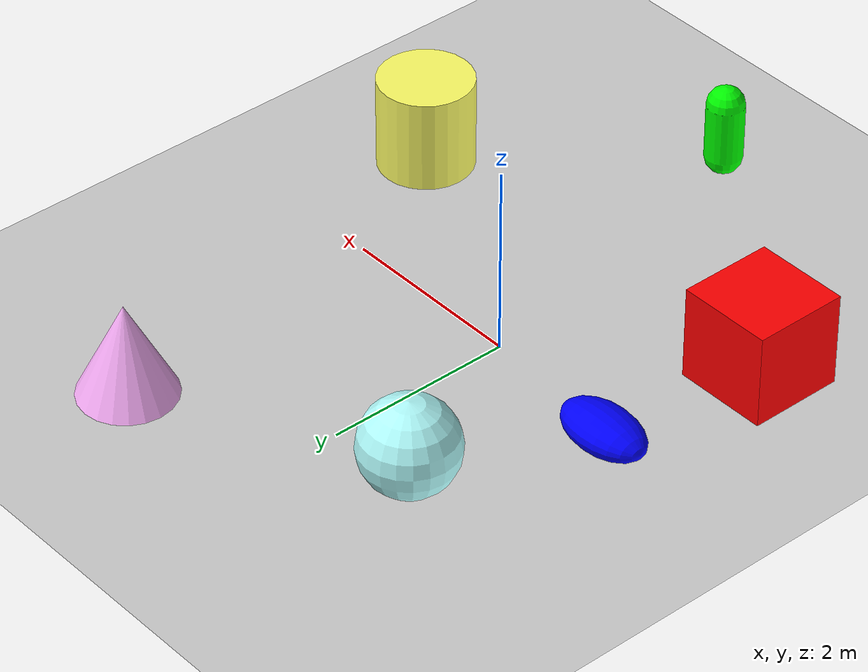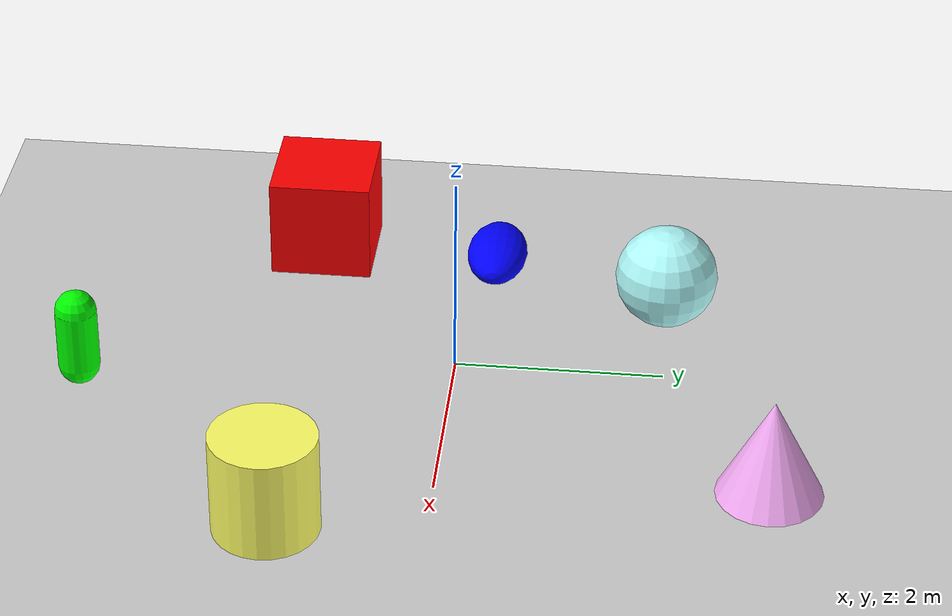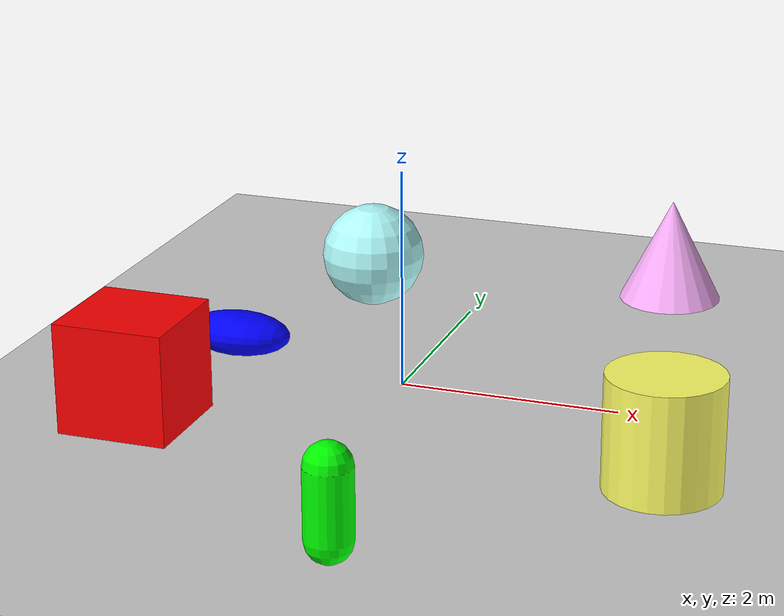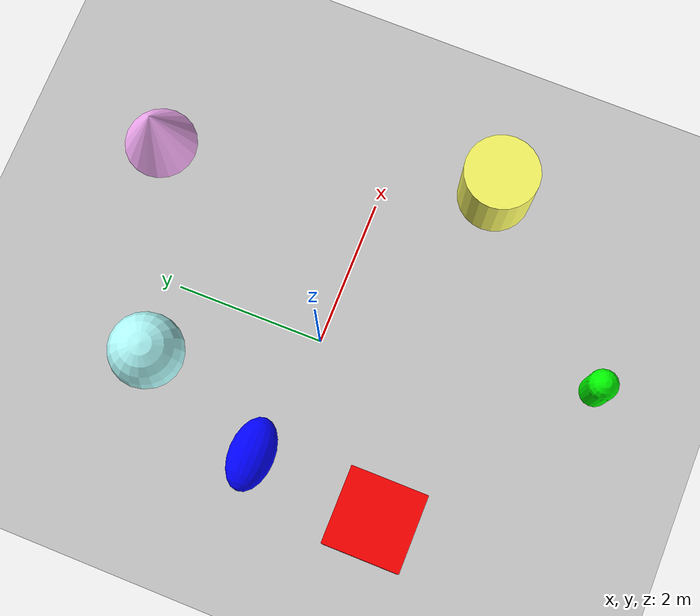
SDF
<sdf version='1.10'>
  <world name='empty'>
    <physics name='1ms' type='ignored'>
      <max_step_size>0.001</max_step_size>
      <real_time_factor>1</real_time_factor>
      <real_time_update_rate>1000</real_time_update_rate>
    </physics>
    <plugin name='gz::sim::systems::Physics' filename='gz-sim-physics-system'/>
    <plugin name='gz::sim::systems::UserCommands' filename='gz-sim-user-commands-system'/>
    <plugin name='gz::sim::systems::SceneBroadcaster' filename='gz-sim-scene-broadcaster-system'/>
    <plugin name='gz::sim::systems::Contact' filename='gz-sim-contact-system'/>
    <gravity>0 0 -9.8000000000000007</gravity>
    <magnetic_field>5.5644999999999998e-06 2.2875799999999999e-05 -4.2388400000000002e-05</magnetic_field>
    <atmosphere type='adiabatic'/>
    <scene>
      <ambient>0.400000006 0.400000006 0.400000006 1</ambient>
      <background>0.699999988 0.699999988 0.699999988 1</background>
      <shadows>true</shadows>
    </scene>
    <model name='ground_plane'>
      <static>true</static>
      <link name='link'>
        <collision name='collision'>
          <geometry>
            <plane>
              <normal>0 0 1</normal>
              <size>100 100</size>
            </plane>
          </geometry>
          <surface>
            <friction>
              <ode/>
            </friction>
            <bounce/>
            <contact/>
          </surface>
        </collision>
        <visual name='visual'>
          <geometry>
            <plane>
              <normal>0 0 1</normal>
              <size>100 100</size>
            </plane>
          </geometry>
          <material>
            <ambient>0.800000012 0.800000012 0.800000012 1</ambient>
            <diffuse>0.800000012 0.800000012 0.800000012 1</diffuse>
            <specular>0.800000012 0.800000012 0.800000012 1</specular>
          </material>
        </visual>
        <pose>0 0 0 0 0 0</pose>
        <inertial>
          <pose>0 0 0 0 0 0</pose>
          <mass>1</mass>
          <inertia>
            <ixx>1</ixx>
            <ixy>0</ixy>
            <ixz>0</ixz>
            <iyy>1</iyy>
            <iyz>0</iyz>
            <izz>1</izz>
          </inertia>
        </inertial>
        <enable_wind>false</enable_wind>
      </link>
      <pose>0 0 0 0 0 0</pose>
      <self_collide>false</self_collide>
    </model>
    <model name='cylinder'>
      <pose>2.7276850710100859 -1.4267220947815418 0.49999943207967634 -3.2562884845771382e-20 4.1682132420080106e-20 -4.5330460627177614e-21</pose>
      <link name='cylinder_link'>
        <inertial>
          <inertia>
            <ixx>0.14580000000000001</ixx>
            <ixy>0</ixy>
            <ixz>0</ixz>
            <iyy>0.14580000000000001</iyy>
            <iyz>0</iyz>
            <izz>0.125</izz>
          </inertia>
          <mass>1</mass>
          <pose>0 0 0 0 0 0</pose>
        </inertial>
        <collision name='cylinder_collision'>
          <geometry>
            <cylinder>
              <radius>0.5</radius>
              <length>1</length>
            </cylinder>
          </geometry>
          <surface>
            <friction>
              <ode/>
            </friction>
            <bounce/>
            <contact/>
          </surface>
        </collision>
        <visual name='cylinder_visual'>
          <geometry>
            <cylinder>
              <radius>0.5</radius>
              <length>1</length>
            </cylinder>
          </geometry>
          <material>
            <ambient>1 1 0.100000009 1</ambient>
            <diffuse>1 1 0.399999976 1</diffuse>
            <specular>1 1 1 1</specular>
          </material>
        </visual>
        <pose>0 0 0 0 0 0</pose>
        <enable_wind>false</enable_wind>
      </link>
      <static>false</static>
      <self_collide>false</self_collide>
    </model>
    <model name='cone'>
      <pose>1.756041414086039 3.0540703916786627 0.49999999992120586 2.2548609724271118e-12 -8.4123610006203687e-10 1.6328016843457965e-17</pose>
      <link name='cone_link'>
        <inertial>
          <inertia>
            <ixx>0.074999999999999997</ixx>
            <ixy>0</ixy>
            <ixz>0</ixz>
            <iyy>0.074999999999999997</iyy>
            <iyz>0</iyz>
            <izz>0.074999999999999997</izz>
          </inertia>
          <mass>1</mass>
          <pose>0 0 0 0 0 0</pose>
        </inertial>
        <collision name='cone_collision'>
          <geometry>
            <cone>
              <radius>0.5</radius>
              <length>1</length>
            </cone>
          </geometry>
          <surface>
            <friction>
              <ode/>
            </friction>
            <bounce/>
            <contact/>
          </surface>
        </collision>
        <visual name='cone_visual'>
          <geometry>
            <cone>
              <radius>0.5</radius>
              <length>1</length>
            </cone>
          </geometry>
          <material>
            <ambient>1 0.300000012 1 1</ambient>
            <diffuse>1 0.699999988 1 1</diffuse>
            <specular>1 1 1 1</specular>
          </material>
        </visual>
        <pose>0 0 0 0 0 0</pose>
        <enable_wind>false</enable_wind>
      </link>
      <static>false</static>
      <self_collide>false</self_collide>
    </model>
    <model name='sphere'>
      <pose>-1.0038084428144778 1.9726264926552954 0.49999999980498194 0 0 0</pose>
      <link name='sphere_link'>
        <inertial>
          <inertia>
            <ixx>0.10000000000000001</ixx>
            <ixy>0</ixy>
            <ixz>0</ixz>
            <iyy>0.10000000000000001</iyy>
            <iyz>0</iyz>
            <izz>0.10000000000000001</izz>
          </inertia>
          <mass>1</mass>
          <pose>0 0 0 0 0 0</pose>
        </inertial>
        <collision name='sphere_collision'>
          <geometry>
            <sphere>
              <radius>0.5</radius>
            </sphere>
          </geometry>
          <surface>
            <friction>
              <ode/>
            </friction>
            <bounce/>
            <contact/>
          </surface>
        </collision>
        <visual name='sphere_visual'>
          <geometry>
            <sphere>
              <radius>0.5</radius>
            </sphere>
          </geometry>
          <material>
            <ambient>0.300000012 1 1 1</ambient>
            <diffuse>0.699999988 1 1 1</diffuse>
            <specular>1 1 1 1</specular>
          </material>
        </visual>
        <pose>0 0 0 0 0 0</pose>
        <enable_wind>false</enable_wind>
      </link>
      <static>false</static>
      <self_collide>false</self_collide>
    </model>
    <model name='box'>
      <pose>-1.92356980478813 -1.5145074185433109 0.5 0 0 0</pose>
      <link name='box_link'>
        <inertial>
          <inertia>
            <ixx>0.16666</ixx>
            <ixy>0</ixy>
            <ixz>0</ixz>
            <iyy>0.16666</iyy>
            <iyz>0</iyz>
            <izz>0.16666</izz>
          </inertia>
          <mass>1</mass>
          <pose>0 0 0 0 0 0</pose>
        </inertial>
        <collision name='box_collision'>
          <geometry>
            <box>
              <size>1 1 1</size>
            </box>
          </geometry>
          <surface>
            <friction>
              <ode/>
            </friction>
            <bounce/>
            <contact/>
          </surface>
        </collision>
        <visual name='box_visual'>
          <geometry>
            <box>
              <size>1 1 1</size>
            </box>
          </geometry>
          <material>
            <ambient>1 0 0 1</ambient>
            <diffuse>1 0 0 1</diffuse>
            <specular>1 0 0 1</specular>
          </material>
        </visual>
        <pose>0 0 0 0 0 0</pose>
        <enable_wind>false</enable_wind>
      </link>
      <static>false</static>
      <self_collide>false</self_collide>
    </model>
    <model name='capsule'>
      <pose>0.66578972299577988 -3.5448893801555323 0.5 0 0 0</pose>
      <link name='capsule_link'>
        <inertial>
          <inertia>
            <ixx>0.074153999999999998</ixx>
            <ixy>0</ixy>
            <ixz>0</ixz>
            <iyy>0.074153999999999998</iyy>
            <iyz>0</iyz>
            <izz>0.018769000000000001</izz>
          </inertia>
          <mass>1</mass>
          <pose>0 0 0 0 0 0</pose>
        </inertial>
        <collision name='capsule_collision'>
          <geometry>
            <capsule>
              <radius>0.20000000000000001</radius>
              <length>0.59999999999999998</length>
            </capsule>
          </geometry>
          <surface>
            <friction>
              <ode/>
            </friction>
            <bounce/>
            <contact/>
          </surface>
        </collision>
        <visual name='capsule_visual'>
          <geometry>
            <capsule>
              <radius>0.20000000000000001</radius>
              <length>0.59999999999999998</length>
            </capsule>
          </geometry>
          <material>
            <ambient>0 1 0 1</ambient>
            <diffuse>0 1 0 1</diffuse>
            <specular>0 1 0 1</specular>
          </material>
        </visual>
        <pose>0 0 0 0 0 0</pose>
        <enable_wind>false</enable_wind>
      </link>
      <static>false</static>
      <self_collide>false</self_collide>
    </model>
    <model name='ellipsoid'>
      <pose>-1.7100000000000002 0.25 0.20000000000000001 0 1.5700000000004057 0</pose>
      <link name='ellipsoid_link'>
        <inertial>
          <inertia>
            <ixx>0.068000000000000005</ixx>
            <ixy>0</ixy>
            <ixz>0</ixz>
            <iyy>0.058000000000000003</iyy>
            <iyz>0</iyz>
            <izz>0.025999999999999999</izz>
          </inertia>
          <mass>1</mass>
          <pose>0 0 0 0 0 0</pose>
        </inertial>
        <collision name='ellipsoid_collision'>
          <geometry>
            <ellipsoid>
              <radii>0.20000000000000001 0.29999999999999999 0.5</radii>
            </ellipsoid>
          </geometry>
          <surface>
            <friction>
              <ode/>
            </friction>
            <bounce/>
            <contact/>
          </surface>
        </collision>
        <visual name='ellipsoid_visual'>
          <geometry>
            <ellipsoid>
              <radii>0.20000000000000001 0.29999999999999999 0.5</radii>
            </ellipsoid>
          </geometry>
          <material>
            <ambient>0 0 1 1</ambient>
            <diffuse>0 0 1 1</diffuse>
            <specular>0 0 1 1</specular>
          </material>
        </visual>
        <pose>0 0 0 0 0 0</pose>
        <enable_wind>false</enable_wind>
      </link>
      <static>false</static>
      <self_collide>false</self_collide>
    </model>
    <light name='sun' type='directional'>
      <pose>0 0 10 0 0 0</pose>
      <cast_shadows>true</cast_shadows>
      <intensity>1</intensity>
      <direction>-0.5 0.10000000000000001 -0.90000000000000002</direction>
      <diffuse>0.800000012 0.800000012 0.800000012 1</diffuse>
      <specular>0.200000003 0.200000003 0.200000003 1</specular>
      <attenuation>
        <range>1000</range>
        <linear>0.01</linear>
        <constant>0.90000000000000002</constant>
        <quadratic>0.001</quadratic>
      </attenuation>
      <spot>
        <inner_angle>0</inner_angle>
        <outer_angle>0</outer_angle>
        <falloff>0</falloff>
      </spot>
    </light>
  </world>
</sdf>
